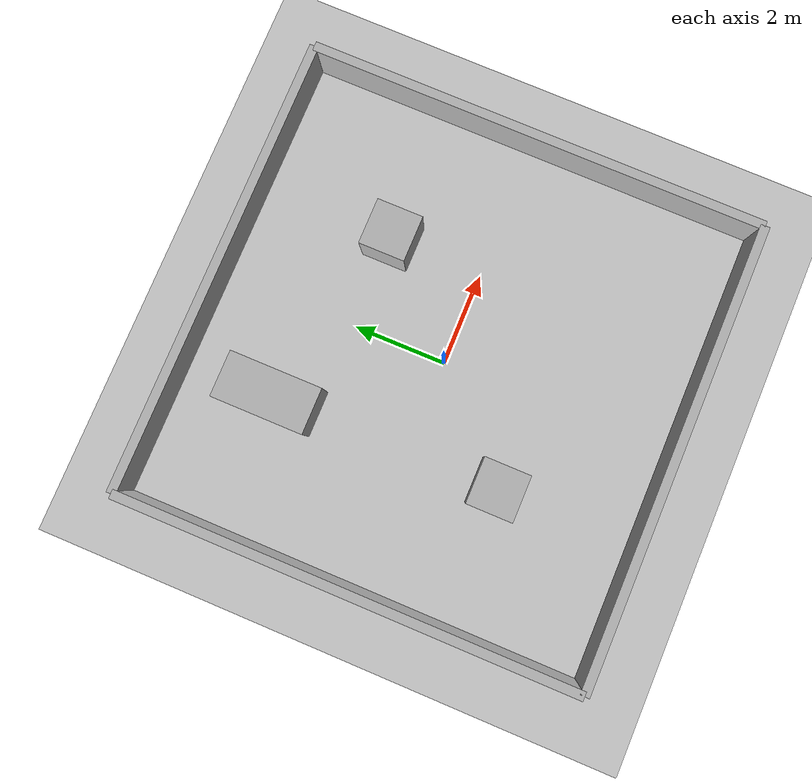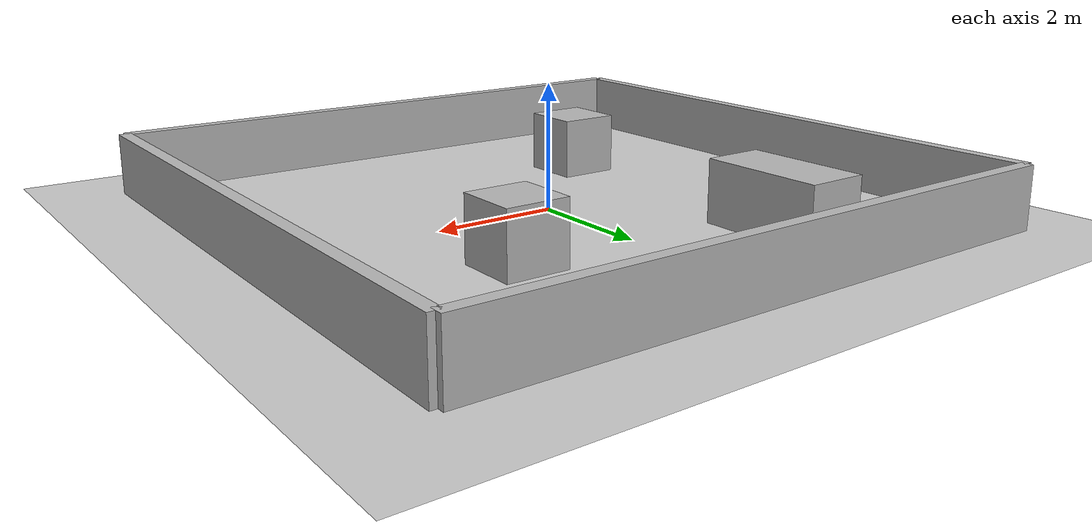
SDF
<?xml version="1.0" ?>
<sdf version="1.6">
  <world name="mcl_world">

    <!-- Luz -->
    <include>
      <uri>model://sun</uri>
    </include>

    <!-- Piso -->
    <include>
      <uri>model://ground_plane</uri>
    </include>

    <!-- Pared Norte -->
    <model name="pared_norte">
      <static>true</static>
      <pose>0 5 0.5 0 0 0</pose>
      <link name="link">
        <collision name="col"><geometry><box><size>10 0.2 1</size></box></geometry></collision>
        <visual name="vis"><geometry><box><size>10 0.2 1</size></box></geometry></visual>
      </link>
    </model>

    <!-- Pared Sur -->
    <model name="pared_sur">
      <static>true</static>
      <pose>0 -5 0.5 0 0 0</pose>
      <link name="link">
        <collision name="col"><geometry><box><size>10 0.2 1</size></box></geometry></collision>
        <visual name="vis"><geometry><box><size>10 0.2 1</size></box></geometry></visual>
      </link>
    </model>

    <!-- Pared Este -->
    <model name="pared_este">
      <static>true</static>
      <pose>5 0 0.5 0 0 0</pose>
      <link name="link">
        <collision name="col"><geometry><box><size>0.2 10 1</size></box></geometry></collision>
        <visual name="vis"><geometry><box><size>0.2 10 1</size></box></geometry></visual>
      </link>
    </model>

    <!-- Pared Oeste -->
    <model name="pared_oeste">
      <static>true</static>
      <pose>-5 0 0.5 0 0 0</pose>
      <link name="link">
        <collision name="col"><geometry><box><size>0.2 10 1</size></box></geometry></collision>
        <visual name="vis"><geometry><box><size>0.2 10 1</size></box></geometry></visual>
      </link>
    </model>

    <!-- Obstáculo 1 -->
    <model name="obstaculo_1">
      <static>true</static>
      <pose>2 2 0.5 0 0 0</pose>
      <link name="link">
        <collision name="col"><geometry><box><size>1 1 1</size></box></geometry></collision>
        <visual name="vis"><geometry><box><size>1 1 1</size></box></geometry></visual>
      </link>
    </model>

    <!-- Obstáculo 2 -->
    <model name="obstaculo_2">
      <static>true</static>
      <pose>-2 -2 0.5 0 0 0</pose>
      <link name="link">
        <collision name="col"><geometry><box><size>1 1 1</size></box></geometry></collision>
        <visual name="vis"><geometry><box><size>1 1 1</size></box></geometry></visual>
      </link>
    </model>

    <!-- Obstáculo 3 -->
    <model name="obstaculo_3">
      <static>true</static>
      <pose>-2 3 0.5 0 0 0</pose>
      <link name="link">
        <collision name="col"><geometry><box><size>1 2 1</size></box></geometry></collision>
        <visual name="vis"><geometry><box><size>1 2 1</size></box></geometry></visual>
      </link>
    </model>

  </world>
</sdf>
